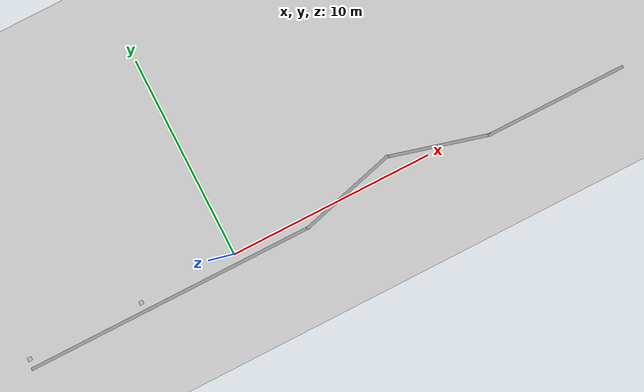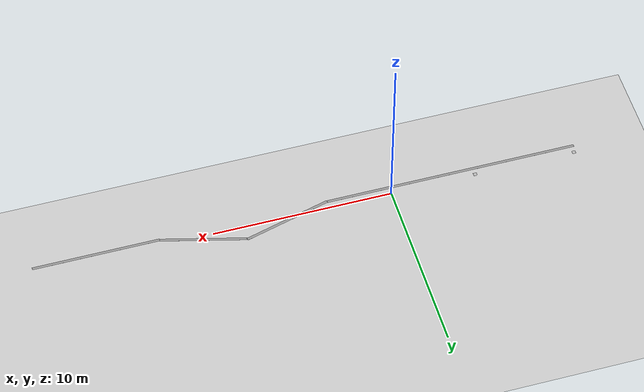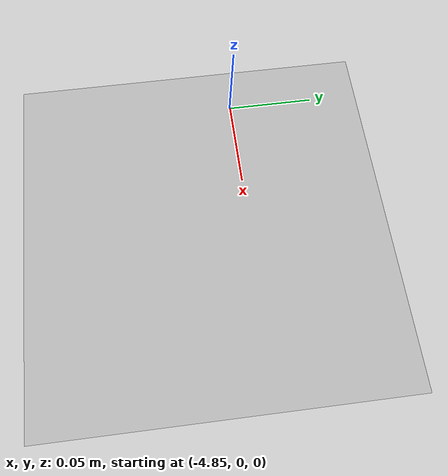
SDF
<sdf version="1.7">
 <world name="default">
  <light name="sun" type="directional">
   <pose>0 0 10 0 -0 0</pose>
   <diffuse>0.8 0.8 0.8 1</diffuse>
   <specular>0.2 0.2 0.2 1</specular>
   <attenuation>
    <range>1000</range>
    <constant>0.9</constant>
    <linear>0.01</linear>
    <quadratic>0.001</quadratic>
   </attenuation>
   <direction>-0.5 0.1 -0.9</direction>
   <spot><inner_angle>0</inner_angle><outer_angle>0</outer_angle><falloff>0</falloff></spot>
  </light>
  <model name="ground_plane">
   <static>1</static>
   <link name="link">
    <collision name="collision">
     <geometry><plane><normal>0 0 1</normal><size>100 100</size></plane></geometry>
     <surface>
      <contact><collide_bitmask>65535</collide_bitmask></contact>
      <friction><ode><mu>100</mu><mu2>50</mu2></ode></friction>
     </surface>
    </collision>
    <visual name="visual">
     <cast_shadows>0</cast_shadows>
     <geometry><plane><normal>0 0 1</normal><size>100 100</size></plane></geometry>
     <material>
      <script><uri>file://media/materials/scripts/gazebo.material</uri><name>Gazebo/Grey</name></script>
     </material>
    </visual>
   </link>
  </model>
  <gravity>0 0 -9.8</gravity>
  <magnetic_field>6e-06 2.3e-05 -4.2e-05</magnetic_field>
  <atmosphere type="adiabatic"/>
  <physics type="ode">
   <max_step_size>0.001</max_step_size>
   <real_time_factor>1</real_time_factor>
   <real_time_update_rate>1000</real_time_update_rate>
  </physics>
  <scene><ambient>0.4 0.4 0.4 1</ambient><background>0.7 0.7 0.7 1</background><shadows>1</shadows></scene>
  <audio><device>default</device></audio>
  <spherical_coordinates>
   <surface_model>EARTH_WGS84</surface_model>
   <latitude_deg>0</latitude_deg>
   <longitude_deg>0</longitude_deg>
   <elevation>0</elevation>
   <heading_deg>0</heading_deg>
  </spherical_coordinates>
  <model name="line2">
   <pose>4.6395 1 0 0 -0 0</pose>
   <link name="Wall_0">
    <collision name="Wall_0_Collision">
     <geometry><box><size>14.25 0.15 0.001</size></box></geometry>
     <pose>0 0 0.0005 0 -0 0</pose>
    </collision>
    <visual name="Wall_0_Visual">
     <pose>0 0 0.0005 0 -0 0</pose>
     <geometry><box><size>14.25 0.15 0.001</size></box></geometry>
     <material>
      <script><uri>file://media/materials/scripts/gazebo.material</uri><name>Gazebo/Grey</name></script>
      <ambient>1 1 1 1</ambient>
     </material>
     <meta><layer>0</layer></meta>
    </visual>
    <pose>-8.1095 -1.45402 0 0 -0 0</pose>
   </link>
   <link name="Wall_1">
    <collision name="Wall_1_Collision">
     <geometry><box><size>5 0.15 0.001</size></box></geometry>
     <pose>0 0 0.0005 0 -0 0</pose>
    </collision>
    <visual name="Wall_1_Visual">
     <pose>0 0 0.0005 0 -0 0</pose>
     <geometry><box><size>5 0.15 0.001</size></box></geometry>
     <material>
      <script><uri>file://media/materials/scripts/gazebo.material</uri><name>Gazebo/Grey</name></script>
      <ambient>1 1 1 1</ambient>
     </material>
     <meta><layer>0</layer></meta>
    </visual>
    <pose>1.283 -0.826522 0 0 -0 0.261731</pose>
   </link>
   <link name="Wall_2">
    <collision name="Wall_2_Collision">
     <geometry><box><size>5 0.15 0.001</size></box></geometry>
     <pose>0 0 0.0005 0 -0 0</pose>
    </collision>
    <visual name="Wall_2_Visual">
     <pose>0 0 0.0005 0 -0 0</pose>
     <geometry><box><size>5 0.15 0.001</size></box></geometry>
     <material>
      <script><uri>file://media/materials/scripts/gazebo.material</uri><name>Gazebo/Grey</name></script>
      <ambient>1 1 1 1</ambient>
     </material>
     <meta><layer>0</layer></meta>
    </visual>
    <pose>5.9675 -0.826522 0 0 -0 -0.261785</pose>
   </link>
   <link name="Wall_3">
    <collision name="Wall_3_Collision">
     <geometry><box><size>7 0.15 0.001</size></box></geometry>
     <pose>0 0 0.0005 0 -0 0</pose>
    </collision>
    <visual name="Wall_3_Visual">
     <pose>0 0 0.0005 0 -0 0</pose>
     <geometry><box><size>7 0.15 0.001</size></box></geometry>
     <material>
      <script><uri>file://media/materials/scripts/gazebo.material</uri><name>Gazebo/Grey</name></script>
      <ambient>1 1 1 1</ambient>
     </material>
     <meta><layer>0</layer></meta>
    </visual>
    <pose>11.7345 -1.45402 0 0 -0 0</pose>
   </link>
   <static>1</static>
  </model>
  <model name="Apriltag36_11_00015_paper_0">
   <link name="main">
    <visual name="main_Visual">
     <geometry><box><size>0.2 0 0.2</size></box></geometry>
     <material>
      <script>
       <uri>model://Apriltag36_11_00015_paper/materials/scripts</uri>
       <uri>model://Apriltag36_11_00015_paper/materials/textures</uri>
       <name>Apriltag36_11_00015</name>
      </script>
     </material>
    </visual>
   </link>
   <static>1</static>
   <pose>-4.76986 -0.024671 0.008012 1.57 -0 0</pose>
  </model>
  <model name="Apriltag36_11_00015_paper_0_clone">
   <link name="main">
    <visual name="main_Visual">
     <geometry><box><size>0.2 0 0.2</size></box></geometry>
     <material>
      <script>
       <uri>model://Apriltag36_11_00015_paper/materials/scripts</uri>
       <uri>model://Apriltag36_11_00015_paper/materials/textures</uri>
       <name>Apriltag36_11_00015</name>
      </script>
     </material>
    </visual>
   </link>
   <static>1</static>
   <pose>-10.4457 0.002991 0.008012 1.57 -0 0</pose>
  </model>
 </world>
</sdf>
